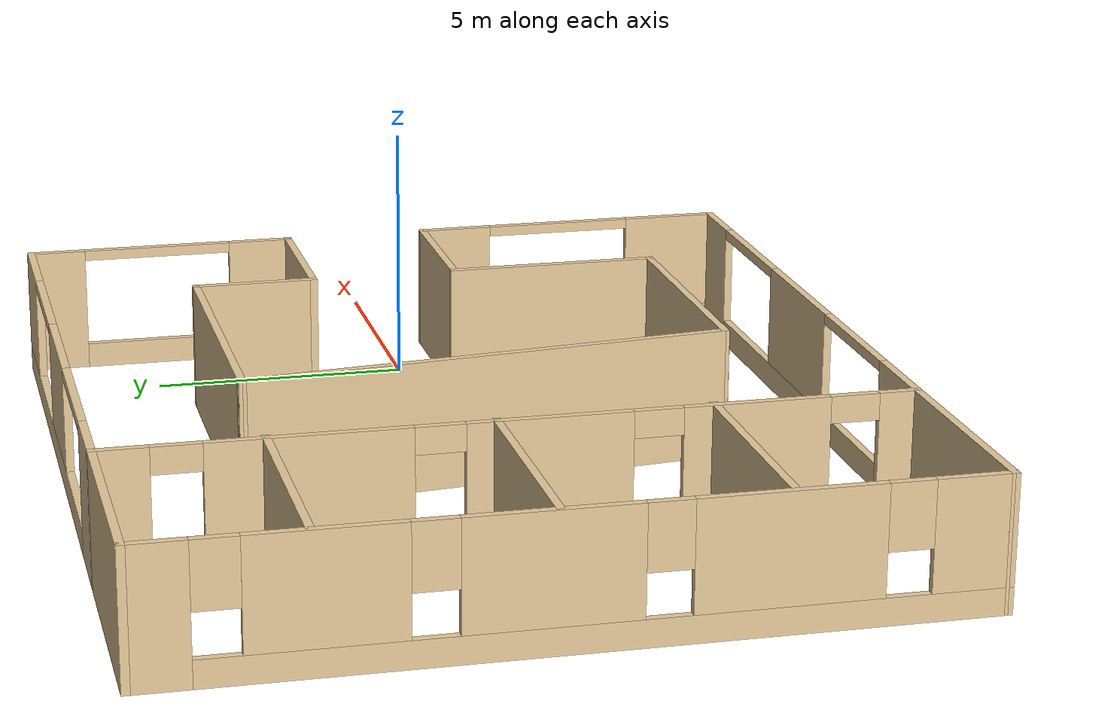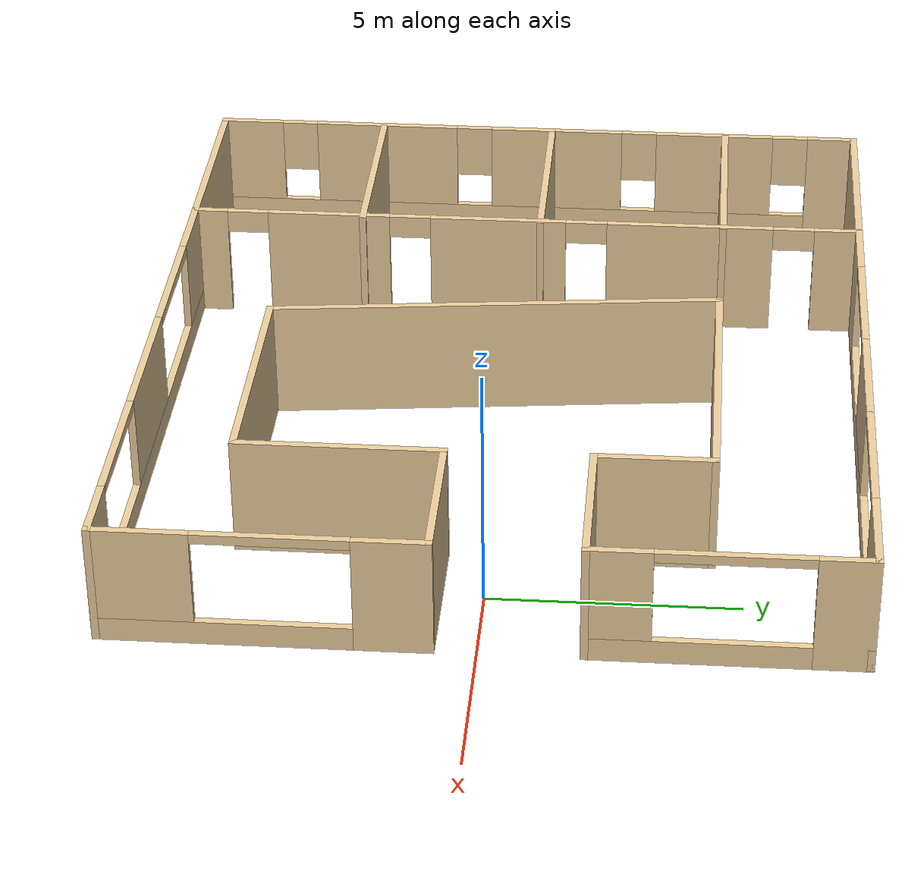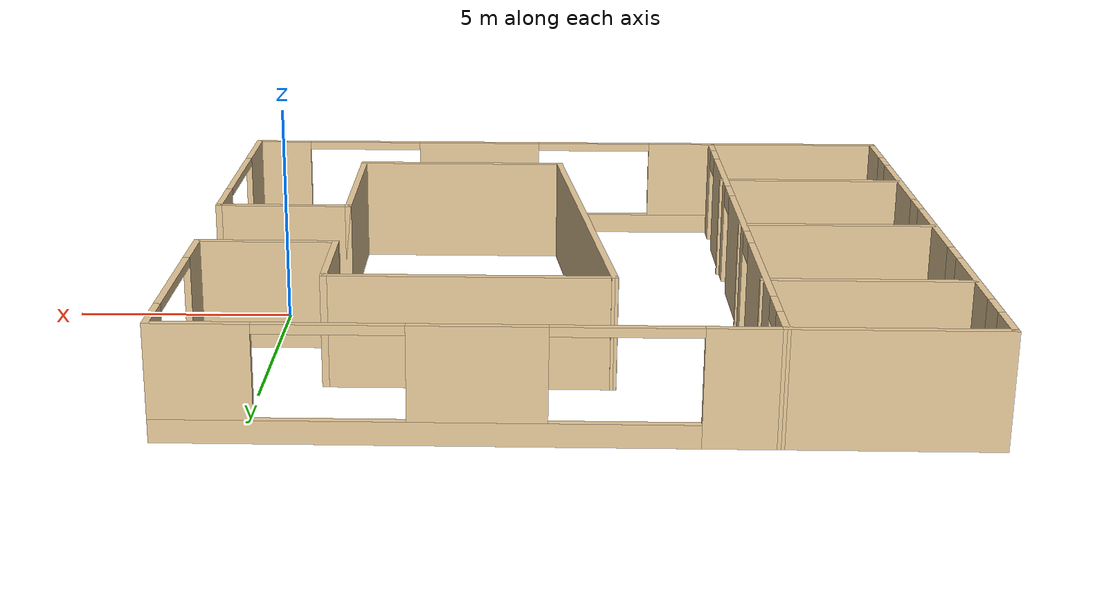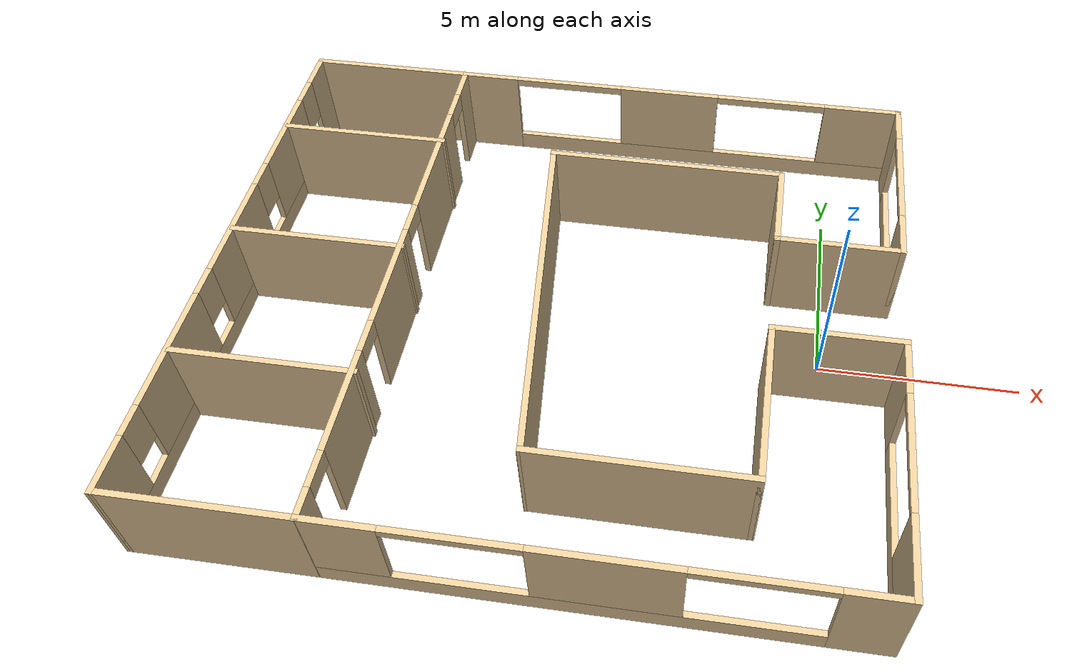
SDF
<?xml version='1.0'?>
<sdf version='1.6'>
  <model name='office'>
    <pose frame=''>-6.6146 0.075202 0 0 -0 0</pose>
    <link name='Wall_16'>
      <pose frame=''>2.16663 7.30005 0 0 -0 0</pose>
      <visual name='Wall_16_Visual_0'>
        <pose frame=''>-5.43994 0 1.25 0 -0 0</pose>
        <geometry>
          <box>
            <size>1.62012 0.15 2.5</size>
          </box>
        </geometry>
        <material>
          <script>
            <uri>file://media/materials/scripts/gazebo.material</uri>
            <name>Gazebo/Grey</name>
          </script>
          <ambient>0.921569 0.807843 0.615686 1</ambient>
        </material>
        <meta>
          <layer>0</layer>
        </meta>
      </visual>
      <collision name='Wall_16_Collision_0'>
        <geometry>
          <box>
            <size>1.62012 0.15 2.5</size>
          </box>
        </geometry>
        <pose frame=''>-5.43994 0 1.25 0 -0 0</pose>
      </collision>
      <visual name='Wall_16_Visual_1'>
        <pose frame=''>0.810061 0 0.25 0 -0 0</pose>
        <geometry>
          <box>
            <size>10.8799 0.15 0.5</size>
          </box>
        </geometry>
        <material>
          <script>
            <uri>file://media/materials/scripts/gazebo.material</uri>
            <name>Gazebo/Grey</name>
          </script>
          <ambient>0.921569 0.807843 0.615686 1</ambient>
        </material>
        <meta>
          <layer>0</layer>
        </meta>
      </visual>
      <collision name='Wall_16_Collision_1'>
        <geometry>
          <box>
            <size>10.8799 0.15 0.5</size>
          </box>
        </geometry>
        <pose frame=''>0.810061 0 0.25 0 -0 0</pose>
      </collision>
      <visual name='Wall_16_Visual_2'>
        <pose frame=''>-0.243954 0 1.5 0 -0 0</pose>
        <geometry>
          <box>
            <size>2.77185 0.15 2</size>
          </box>
        </geometry>
        <material>
          <script>
            <uri>file://media/materials/scripts/gazebo.material</uri>
            <name>Gazebo/Grey</name>
          </script>
          <ambient>0.921569 0.807843 0.615686 1</ambient>
        </material>
        <meta>
          <layer>0</layer>
        </meta>
      </visual>
      <collision name='Wall_16_Collision_2'>
        <geometry>
          <box>
            <size>2.77185 0.15 2</size>
          </box>
        </geometry>
        <pose frame=''>-0.243954 0 1.5 0 -0 0</pose>
      </collision>
      <visual name='Wall_16_Visual_3'>
        <pose frame=''>5.19599 0 1.5 0 -0 0</pose>
        <geometry>
          <box>
            <size>2.10803 0.15 2</size>
          </box>
        </geometry>
        <material>
          <script>
            <uri>file://media/materials/scripts/gazebo.material</uri>
            <name>Gazebo/Grey</name>
          </script>
          <ambient>0.921569 0.807843 0.615686 1</ambient>
        </material>
        <meta>
          <layer>0</layer>
        </meta>
      </visual>
      <collision name='Wall_16_Collision_3'>
        <geometry>
          <box>
            <size>2.10803 0.15 2</size>
          </box>
        </geometry>
        <pose frame=''>5.19599 0 1.5 0 -0 0</pose>
      </collision>
      <visual name='Wall_16_Visual_4'>
        <pose frame=''>-3.12988 0 2.4 0 -0 0</pose>
        <geometry>
          <box>
            <size>3 0.15 0.2</size>
          </box>
        </geometry>
        <material>
          <script>
            <uri>file://media/materials/scripts/gazebo.material</uri>
            <name>Gazebo/Grey</name>
          </script>
          <ambient>0.921569 0.807843 0.615686 1</ambient>
        </material>
        <meta>
          <layer>0</layer>
        </meta>
      </visual>
      <collision name='Wall_16_Collision_4'>
        <geometry>
          <box>
            <size>3 0.15 0.2</size>
          </box>
        </geometry>
        <pose frame=''>-3.12988 0 2.4 0 -0 0</pose>
      </collision>
      <visual name='Wall_16_Visual_5'>
        <pose frame=''>2.64197 0 2.4 0 -0 0</pose>
        <geometry>
          <box>
            <size>3 0.15 0.2</size>
          </box>
        </geometry>
        <material>
          <script>
            <uri>file://media/materials/scripts/gazebo.material</uri>
            <name>Gazebo/Grey</name>
          </script>
          <ambient>0.921569 0.807843 0.615686 1</ambient>
        </material>
        <meta>
          <layer>0</layer>
        </meta>
      </visual>
      <collision name='Wall_16_Collision_5'>
        <geometry>
          <box>
            <size>3 0.15 0.2</size>
          </box>
        </geometry>
        <pose frame=''>2.64197 0 2.4 0 -0 0</pose>
      </collision>
    </link>
    <link name='Wall_17'>
      <pose frame=''>8.34163 4.62505 0 0 0 -1.5708</pose>
      <visual name='Wall_17_Visual_0'>
        <pose frame=''>-2.16525 0 1.25 0 -0 0</pose>
        <geometry>
          <box>
            <size>1.16949 0.15 2.5</size>
          </box>
        </geometry>
        <material>
          <script>
            <uri>file://media/materials/scripts/gazebo.material</uri>
            <name>Gazebo/Grey</name>
          </script>
          <ambient>0.921569 0.807843 0.615686 1</ambient>
        </material>
        <meta>
          <layer>0</layer>
        </meta>
      </visual>
      <collision name='Wall_17_Collision_0'>
        <geometry>
          <box>
            <size>1.16949 0.15 2.5</size>
          </box>
        </geometry>
        <pose frame=''>-2.16525 0 1.25 0 -0 0</pose>
      </collision>
      <visual name='Wall_17_Visual_1'>
        <pose frame=''>0.584746 0 0.25 0 -0 0</pose>
        <geometry>
          <box>
            <size>4.33051 0.15 0.5</size>
          </box>
        </geometry>
        <material>
          <script>
            <uri>file://media/materials/scripts/gazebo.material</uri>
            <name>Gazebo/Grey</name>
          </script>
          <ambient>0.921569 0.807843 0.615686 1</ambient>
        </material>
        <meta>
          <layer>0</layer>
        </meta>
      </visual>
      <collision name='Wall_17_Collision_1'>
        <geometry>
          <box>
            <size>4.33051 0.15 0.5</size>
          </box>
        </geometry>
        <pose frame=''>0.584746 0 0.25 0 -0 0</pose>
      </collision>
      <visual name='Wall_17_Visual_2'>
        <pose frame=''>2.08475 0 1.5 0 -0 0</pose>
        <geometry>
          <box>
            <size>1.33051 0.15 2</size>
          </box>
        </geometry>
        <material>
          <script>
            <uri>file://media/materials/scripts/gazebo.material</uri>
            <name>Gazebo/Grey</name>
          </script>
          <ambient>0.921569 0.807843 0.615686 1</ambient>
        </material>
        <meta>
          <layer>0</layer>
        </meta>
      </visual>
      <collision name='Wall_17_Collision_2'>
        <geometry>
          <box>
            <size>1.33051 0.15 2</size>
          </box>
        </geometry>
        <pose frame=''>2.08475 0 1.5 0 -0 0</pose>
      </collision>
      <visual name='Wall_17_Visual_3'>
        <pose frame=''>-0.080508 0 2.4 0 -0 0</pose>
        <geometry>
          <box>
            <size>3 0.15 0.2</size>
          </box>
        </geometry>
        <material>
          <script>
            <uri>file://media/materials/scripts/gazebo.material</uri>
            <name>Gazebo/Grey</name>
          </script>
          <ambient>0.921569 0.807843 0.615686 1</ambient>
        </material>
        <meta>
          <layer>0</layer>
        </meta>
      </visual>
      <collision name='Wall_17_Collision_3'>
        <geometry>
          <box>
            <size>3 0.15 0.2</size>
          </box>
        </geometry>
        <pose frame=''>-0.080508 0 2.4 0 -0 0</pose>
      </collision>
    </link>
    <link name='Wall_18'>
      <collision name='Wall_18_Collision'>
        <geometry>
          <box>
            <size>3.25 0.15 2.5</size>
          </box>
        </geometry>
        <pose frame=''>0 0 1.25 0 -0 0</pose>
      </collision>
      <visual name='Wall_18_Visual'>
        <pose frame=''>0 0 1.25 0 -0 0</pose>
        <geometry>
          <box>
            <size>3.25 0.15 2.5</size>
          </box>
        </geometry>
        <material>
          <script>
            <uri>file://media/materials/scripts/gazebo.material</uri>
            <name>Gazebo/Grey</name>
          </script>
          <ambient>0.921569 0.807843 0.615686 1</ambient>
        </material>
        <meta>
          <layer>0</layer>
        </meta>
      </visual>
      <pose frame=''>6.79163 1.95005 0 0 -0 3.14159</pose>
    </link>
    <link name='Wall_19'>
      <collision name='Wall_19_Collision'>
        <geometry>
          <box>
            <size>2.5 0.15 2.5</size>
          </box>
        </geometry>
        <pose frame=''>0 0 1.25 0 -0 0</pose>
      </collision>
      <visual name='Wall_19_Visual'>
        <pose frame=''>0 0 1.25 0 -0 0</pose>
        <geometry>
          <box>
            <size>2.5 0.15 2.5</size>
          </box>
        </geometry>
        <material>
          <script>
            <uri>file://media/materials/scripts/gazebo.material</uri>
            <name>Gazebo/Grey</name>
          </script>
          <ambient>0.921569 0.807843 0.615686 1</ambient>
        </material>
        <meta>
          <layer>0</layer>
        </meta>
      </visual>
      <pose frame=''>5.24163 3.12505 0 0 -0 1.5708</pose>
    </link>
    <link name='Wall_20'>
      <collision name='Wall_20_Collision'>
        <geometry>
          <box>
            <size>6.25 0.15 2.5</size>
          </box>
        </geometry>
        <pose frame=''>0 0 1.25 0 -0 0</pose>
      </collision>
      <visual name='Wall_20_Visual'>
        <pose frame=''>0 0 1.25 0 -0 0</pose>
        <geometry>
          <box>
            <size>6.25 0.15 2.5</size>
          </box>
        </geometry>
        <material>
          <script>
            <uri>file://media/materials/scripts/gazebo.material</uri>
            <name>Gazebo/Grey</name>
          </script>
          <ambient>0.921569 0.807843 0.615686 1</ambient>
        </material>
        <meta>
          <layer>0</layer>
        </meta>
      </visual>
      <pose frame=''>2.19163 4.30005 0 0 -0 3.14159</pose>
    </link>
    <link name='Wall_21'>
      <collision name='Wall_21_Collision'>
        <geometry>
          <box>
            <size>9.54415 0.15 2.5</size>
          </box>
        </geometry>
        <pose frame=''>0 0 1.25 0 -0 0</pose>
      </collision>
      <visual name='Wall_21_Visual'>
        <pose frame=''>0 0 1.25 0 -0 0</pose>
        <geometry>
          <box>
            <size>9.54415 0.15 2.5</size>
          </box>
        </geometry>
        <material>
          <script>
            <uri>file://media/materials/scripts/gazebo.material</uri>
            <name>Gazebo/Grey</name>
          </script>
          <ambient>0.921569 0.807843 0.615686 1</ambient>
        </material>
        <meta>
          <layer>0</layer>
        </meta>
      </visual>
      <pose frame=''>-0.349906 -0.369424 0 0 0 -1.46233</pose>
    </link>
    <link name='Wall_22'>
      <collision name='Wall_22_Collision'>
        <geometry>
          <box>
            <size>5.25 0.15 2.5</size>
          </box>
        </geometry>
        <pose frame=''>0 0 1.25 0 -0 0</pose>
      </collision>
      <visual name='Wall_22_Visual'>
        <pose frame=''>0 0 1.25 0 -0 0</pose>
        <geometry>
          <box>
            <size>5.25 0.15 2.5</size>
          </box>
        </geometry>
        <material>
          <script>
            <uri>file://media/materials/scripts/gazebo.material</uri>
            <name>Gazebo/Grey</name>
          </script>
          <ambient>0.921569 0.807843 0.615686 1</ambient>
        </material>
        <meta>
          <layer>0</layer>
        </meta>
      </visual>
      <pose frame=''>2.70856 -5.0389 0 0 -0 0</pose>
    </link>
    <link name='Wall_23'>
      <collision name='Wall_23_Collision'>
        <geometry>
          <box>
            <size>4.25 0.15 2.5</size>
          </box>
        </geometry>
        <pose frame=''>0 0 1.25 0 -0 0</pose>
      </collision>
      <visual name='Wall_23_Visual'>
        <pose frame=''>0 0 1.25 0 -0 0</pose>
        <geometry>
          <box>
            <size>4.25 0.15 2.5</size>
          </box>
        </geometry>
        <material>
          <script>
            <uri>file://media/materials/scripts/gazebo.material</uri>
            <name>Gazebo/Grey</name>
          </script>
          <ambient>0.921569 0.807843 0.615686 1</ambient>
        </material>
        <meta>
          <layer>0</layer>
        </meta>
      </visual>
      <pose frame=''>5.25856 -2.9889 0 0 -0 1.5708</pose>
    </link>
    <link name='Wall_24'>
      <collision name='Wall_24_Collision'>
        <geometry>
          <box>
            <size>3.25 0.15 2.5</size>
          </box>
        </geometry>
        <pose frame=''>0 0 1.25 0 -0 0</pose>
      </collision>
      <visual name='Wall_24_Visual'>
        <pose frame=''>0 0 1.25 0 -0 0</pose>
        <geometry>
          <box>
            <size>3.25 0.15 2.5</size>
          </box>
        </geometry>
        <material>
          <script>
            <uri>file://media/materials/scripts/gazebo.material</uri>
            <name>Gazebo/Grey</name>
          </script>
          <ambient>0.921569 0.807843 0.615686 1</ambient>
        </material>
        <meta>
          <layer>0</layer>
        </meta>
      </visual>
      <pose frame=''>6.80856 -0.9389 0 0 -0 0</pose>
    </link>
    <link name='Wall_25'>
      <pose frame=''>8.35856 -4.1139 0 0 0 -1.5708</pose>
      <visual name='Wall_25_Visual_0'>
        <pose frame=''>-2.4888 0 1.25 0 -0 0</pose>
        <geometry>
          <box>
            <size>1.52241 0.15 2.5</size>
          </box>
        </geometry>
        <material>
          <script>
            <uri>file://media/materials/scripts/gazebo.material</uri>
            <name>Gazebo/Grey</name>
          </script>
          <ambient>0.921569 0.807843 0.615686 1</ambient>
        </material>
        <meta>
          <layer>0</layer>
        </meta>
      </visual>
      <collision name='Wall_25_Collision_0'>
        <geometry>
          <box>
            <size>1.52241 0.15 2.5</size>
          </box>
        </geometry>
        <pose frame=''>-2.4888 0 1.25 0 -0 0</pose>
      </collision>
      <visual name='Wall_25_Visual_1'>
        <pose frame=''>0.761203 0 0.25 0 -0 0</pose>
        <geometry>
          <box>
            <size>4.97759 0.15 0.5</size>
          </box>
        </geometry>
        <material>
          <script>
            <uri>file://media/materials/scripts/gazebo.material</uri>
            <name>Gazebo/Grey</name>
          </script>
          <ambient>0.921569 0.807843 0.615686 1</ambient>
        </material>
        <meta>
          <layer>0</layer>
        </meta>
      </visual>
      <collision name='Wall_25_Collision_1'>
        <geometry>
          <box>
            <size>4.97759 0.15 0.5</size>
          </box>
        </geometry>
        <pose frame=''>0.761203 0 0.25 0 -0 0</pose>
      </collision>
      <visual name='Wall_25_Visual_2'>
        <pose frame=''>2.2612 0 1.5 0 -0 0</pose>
        <geometry>
          <box>
            <size>1.97759 0.15 2</size>
          </box>
        </geometry>
        <material>
          <script>
            <uri>file://media/materials/scripts/gazebo.material</uri>
            <name>Gazebo/Grey</name>
          </script>
          <ambient>0.921569 0.807843 0.615686 1</ambient>
        </material>
        <meta>
          <layer>0</layer>
        </meta>
      </visual>
      <collision name='Wall_25_Collision_2'>
        <geometry>
          <box>
            <size>1.97759 0.15 2</size>
          </box>
        </geometry>
        <pose frame=''>2.2612 0 1.5 0 -0 0</pose>
      </collision>
      <visual name='Wall_25_Visual_3'>
        <pose frame=''>-0.227595 0 2.4 0 -0 0</pose>
        <geometry>
          <box>
            <size>3 0.15 0.2</size>
          </box>
        </geometry>
        <material>
          <script>
            <uri>file://media/materials/scripts/gazebo.material</uri>
            <name>Gazebo/Grey</name>
          </script>
          <ambient>0.921569 0.807843 0.615686 1</ambient>
        </material>
        <meta>
          <layer>0</layer>
        </meta>
      </visual>
      <collision name='Wall_25_Collision_3'>
        <geometry>
          <box>
            <size>3 0.15 0.2</size>
          </box>
        </geometry>
        <pose frame=''>-0.227595 0 2.4 0 -0 0</pose>
      </collision>
    </link>
    <link name='Wall_27'>
      <pose frame=''>2.18356 -7.2889 0 0 -0 3.14159</pose>
      <visual name='Wall_27_Visual_0'>
        <pose frame=''>-5.50692 0 1.25 0 -0 0</pose>
        <geometry>
          <box>
            <size>1.48615 0.15 2.5</size>
          </box>
        </geometry>
        <material>
          <script>
            <uri>file://media/materials/scripts/gazebo.material</uri>
            <name>Gazebo/Grey</name>
          </script>
          <ambient>0.921569 0.807843 0.615686 1</ambient>
        </material>
        <meta>
          <layer>0</layer>
        </meta>
      </visual>
      <collision name='Wall_27_Collision_0'>
        <geometry>
          <box>
            <size>1.48615 0.15 2.5</size>
          </box>
        </geometry>
        <pose frame=''>-5.50692 0 1.25 0 -0 0</pose>
      </collision>
      <visual name='Wall_27_Visual_1'>
        <pose frame=''>0.743078 0 0.25 0 -0 0</pose>
        <geometry>
          <box>
            <size>11.0138 0.15 0.5</size>
          </box>
        </geometry>
        <material>
          <script>
            <uri>file://media/materials/scripts/gazebo.material</uri>
            <name>Gazebo/Grey</name>
          </script>
          <ambient>0.921569 0.807843 0.615686 1</ambient>
        </material>
        <meta>
          <layer>0</layer>
        </meta>
      </visual>
      <collision name='Wall_27_Collision_1'>
        <geometry>
          <box>
            <size>11.0138 0.15 0.5</size>
          </box>
        </geometry>
        <pose frame=''>0.743078 0 0.25 0 -0 0</pose>
      </collision>
      <visual name='Wall_27_Visual_2'>
        <pose frame=''>-0.138321 0 1.5 0 -0 0</pose>
        <geometry>
          <box>
            <size>3.25105 0.15 2</size>
          </box>
        </geometry>
        <material>
          <script>
            <uri>file://media/materials/scripts/gazebo.material</uri>
            <name>Gazebo/Grey</name>
          </script>
          <ambient>0.921569 0.807843 0.615686 1</ambient>
        </material>
        <meta>
          <layer>0</layer>
        </meta>
      </visual>
      <collision name='Wall_27_Collision_2'>
        <geometry>
          <box>
            <size>3.25105 0.15 2</size>
          </box>
        </geometry>
        <pose frame=''>-0.138321 0 1.5 0 -0 0</pose>
      </collision>
      <visual name='Wall_27_Visual_3'>
        <pose frame=''>5.3686 0 1.5 0 -0 0</pose>
        <geometry>
          <box>
            <size>1.7628 0.15 2</size>
          </box>
        </geometry>
        <material>
          <script>
            <uri>file://media/materials/scripts/gazebo.material</uri>
            <name>Gazebo/Grey</name>
          </script>
          <ambient>0.921569 0.807843 0.615686 1</ambient>
        </material>
        <meta>
          <layer>0</layer>
        </meta>
      </visual>
      <collision name='Wall_27_Collision_3'>
        <geometry>
          <box>
            <size>1.7628 0.15 2</size>
          </box>
        </geometry>
        <pose frame=''>5.3686 0 1.5 0 -0 0</pose>
      </collision>
      <visual name='Wall_27_Visual_4'>
        <pose frame=''>-3.26384 0 2.4 0 -0 0</pose>
        <geometry>
          <box>
            <size>3 0.15 0.2</size>
          </box>
        </geometry>
        <material>
          <script>
            <uri>file://media/materials/scripts/gazebo.material</uri>
            <name>Gazebo/Grey</name>
          </script>
          <ambient>0.921569 0.807843 0.615686 1</ambient>
        </material>
        <meta>
          <layer>0</layer>
        </meta>
      </visual>
      <collision name='Wall_27_Collision_4'>
        <geometry>
          <box>
            <size>3 0.15 0.2</size>
          </box>
        </geometry>
        <pose frame=''>-3.26384 0 2.4 0 -0 0</pose>
      </collision>
      <visual name='Wall_27_Visual_5'>
        <pose frame=''>2.9872 0 2.4 0 -0 0</pose>
        <geometry>
          <box>
            <size>3 0.15 0.2</size>
          </box>
        </geometry>
        <material>
          <script>
            <uri>file://media/materials/scripts/gazebo.material</uri>
            <name>Gazebo/Grey</name>
          </script>
          <ambient>0.921569 0.807843 0.615686 1</ambient>
        </material>
        <meta>
          <layer>0</layer>
        </meta>
      </visual>
      <collision name='Wall_27_Collision_5'>
        <geometry>
          <box>
            <size>3 0.15 0.2</size>
          </box>
        </geometry>
        <pose frame=''>2.9872 0 2.4 0 -0 0</pose>
      </collision>
    </link>
    <link name='Wall_28'>
      <pose frame=''>-3.99991 0.005576 0 0 -0 1.57196</pose>
      <visual name='Wall_28_Visual_0'>
        <pose frame=''>-6.97284 0 1.25 0 -0 0</pose>
        <geometry>
          <box>
            <size>0.793275 0.15 2.5</size>
          </box>
        </geometry>
        <material>
          <script>
            <uri>file://media/materials/scripts/gazebo.material</uri>
            <name>Gazebo/Grey</name>
          </script>
          <ambient>0.921569 0.807843 0.615686 1</ambient>
        </material>
        <meta>
          <layer>0</layer>
        </meta>
      </visual>
      <collision name='Wall_28_Collision_0'>
        <geometry>
          <box>
            <size>0.793275 0.15 2.5</size>
          </box>
        </geometry>
        <pose frame=''>-6.97284 0 1.25 0 -0 0</pose>
      </collision>
      <visual name='Wall_28_Visual_1'>
        <pose frame=''>-4.33085 0 1.25 0 -0 0</pose>
        <geometry>
          <box>
            <size>2.69072 0.15 2.5</size>
          </box>
        </geometry>
        <material>
          <script>
            <uri>file://media/materials/scripts/gazebo.material</uri>
            <name>Gazebo/Grey</name>
          </script>
          <ambient>0.921569 0.807843 0.615686 1</ambient>
        </material>
        <meta>
          <layer>0</layer>
        </meta>
      </visual>
      <collision name='Wall_28_Collision_1'>
        <geometry>
          <box>
            <size>2.69072 0.15 2.5</size>
          </box>
        </geometry>
        <pose frame=''>-4.33085 0 1.25 0 -0 0</pose>
      </collision>
      <visual name='Wall_28_Visual_2'>
        <pose frame=''>-0.593492 0 1.25 0 -0 0</pose>
        <geometry>
          <box>
            <size>2.984 0.15 2.5</size>
          </box>
        </geometry>
        <material>
          <script>
            <uri>file://media/materials/scripts/gazebo.material</uri>
            <name>Gazebo/Grey</name>
          </script>
          <ambient>0.921569 0.807843 0.615686 1</ambient>
        </material>
        <meta>
          <layer>0</layer>
        </meta>
      </visual>
      <collision name='Wall_28_Collision_2'>
        <geometry>
          <box>
            <size>2.984 0.15 2.5</size>
          </box>
        </geometry>
        <pose frame=''>-0.593492 0 1.25 0 -0 0</pose>
      </collision>
      <visual name='Wall_28_Visual_3'>
        <pose frame=''>3.61338 0 1.25 0 -0 0</pose>
        <geometry>
          <box>
            <size>3.62975 0.15 2.5</size>
          </box>
        </geometry>
        <material>
          <script>
            <uri>file://media/materials/scripts/gazebo.material</uri>
            <name>Gazebo/Grey</name>
          </script>
          <ambient>0.921569 0.807843 0.615686 1</ambient>
        </material>
        <meta>
          <layer>0</layer>
        </meta>
      </visual>
      <collision name='Wall_28_Collision_3'>
        <geometry>
          <box>
            <size>3.62975 0.15 2.5</size>
          </box>
        </geometry>
        <pose frame=''>3.61338 0 1.25 0 -0 0</pose>
      </collision>
      <visual name='Wall_28_Visual_4'>
        <pose frame=''>6.84887 0 1.25 0 -0 0</pose>
        <geometry>
          <box>
            <size>1.04123 0.15 2.5</size>
          </box>
        </geometry>
        <material>
          <script>
            <uri>file://media/materials/scripts/gazebo.material</uri>
            <name>Gazebo/Grey</name>
          </script>
          <ambient>0.921569 0.807843 0.615686 1</ambient>
        </material>
        <meta>
          <layer>0</layer>
        </meta>
      </visual>
      <collision name='Wall_28_Collision_4'>
        <geometry>
          <box>
            <size>1.04123 0.15 2.5</size>
          </box>
        </geometry>
        <pose frame=''>6.84887 0 1.25 0 -0 0</pose>
      </collision>
      <visual name='Wall_28_Visual_5'>
        <pose frame=''>-6.12621 0 2.25 0 -0 0</pose>
        <geometry>
          <box>
            <size>0.9 0.15 0.5</size>
          </box>
        </geometry>
        <material>
          <script>
            <uri>file://media/materials/scripts/gazebo.material</uri>
            <name>Gazebo/Grey</name>
          </script>
          <ambient>0.921569 0.807843 0.615686 1</ambient>
        </material>
        <meta>
          <layer>0</layer>
        </meta>
      </visual>
      <collision name='Wall_28_Collision_5'>
        <geometry>
          <box>
            <size>0.9 0.15 0.5</size>
          </box>
        </geometry>
        <pose frame=''>-6.12621 0 2.25 0 -0 0</pose>
      </collision>
      <visual name='Wall_28_Visual_6'>
        <pose frame=''>-2.53549 0 2.25 0 -0 0</pose>
        <geometry>
          <box>
            <size>0.9 0.15 0.5</size>
          </box>
        </geometry>
        <material>
          <script>
            <uri>file://media/materials/scripts/gazebo.material</uri>
            <name>Gazebo/Grey</name>
          </script>
          <ambient>0.921569 0.807843 0.615686 1</ambient>
        </material>
        <meta>
          <layer>0</layer>
        </meta>
      </visual>
      <collision name='Wall_28_Collision_6'>
        <geometry>
          <box>
            <size>0.9 0.15 0.5</size>
          </box>
        </geometry>
        <pose frame=''>-2.53549 0 2.25 0 -0 0</pose>
      </collision>
      <visual name='Wall_28_Visual_7'>
        <pose frame=''>1.34851 0 2.25 0 -0 0</pose>
        <geometry>
          <box>
            <size>0.9 0.15 0.5</size>
          </box>
        </geometry>
        <material>
          <script>
            <uri>file://media/materials/scripts/gazebo.material</uri>
            <name>Gazebo/Grey</name>
          </script>
          <ambient>0.921569 0.807843 0.615686 1</ambient>
        </material>
        <meta>
          <layer>0</layer>
        </meta>
      </visual>
      <collision name='Wall_28_Collision_7'>
        <geometry>
          <box>
            <size>0.9 0.15 0.5</size>
          </box>
        </geometry>
        <pose frame=''>1.34851 0 2.25 0 -0 0</pose>
      </collision>
      <visual name='Wall_28_Visual_8'>
        <pose frame=''>5.87826 0 2.25 0 -0 0</pose>
        <geometry>
          <box>
            <size>0.9 0.15 0.5</size>
          </box>
        </geometry>
        <material>
          <script>
            <uri>file://media/materials/scripts/gazebo.material</uri>
            <name>Gazebo/Grey</name>
          </script>
          <ambient>0.921569 0.807843 0.615686 1</ambient>
        </material>
        <meta>
          <layer>0</layer>
        </meta>
      </visual>
      <collision name='Wall_28_Collision_8'>
        <geometry>
          <box>
            <size>0.9 0.15 0.5</size>
          </box>
        </geometry>
        <pose frame=''>5.87826 0 2.25 0 -0 0</pose>
      </collision>
    </link>
    <link name='Wall_30'>
      <collision name='Wall_30_Collision'>
        <geometry>
          <box>
            <size>4.5 0.15 2.5</size>
          </box>
        </geometry>
        <pose frame=''>0 0 1.25 0 -0 0</pose>
      </collision>
      <visual name='Wall_30_Visual'>
        <pose frame=''>0 0 1.25 0 -0 0</pose>
        <geometry>
          <box>
            <size>4.5 0.15 2.5</size>
          </box>
        </geometry>
        <material>
          <script>
            <uri>file://media/materials/scripts/gazebo.material</uri>
            <name>Gazebo/Grey</name>
          </script>
          <ambient>0.921569 0.807843 0.615686 1</ambient>
        </material>
        <meta>
          <layer>0</layer>
        </meta>
      </visual>
      <pose frame=''>-6.18337 7.30005 0 0 -0 3.14159</pose>
    </link>
    <link name='Wall_31'>
      <pose frame=''>-8.35837 5.1e-05 0 0 0 -1.5708</pose>
      <visual name='Wall_31_Visual_0'>
        <pose frame=''>-6.81216 0 1.25 0 -0 0</pose>
        <geometry>
          <box>
            <size>1.12568 0.15 2.5</size>
          </box>
        </geometry>
        <material>
          <script>
            <uri>file://media/materials/scripts/gazebo.material</uri>
            <name>Gazebo/Grey</name>
          </script>
          <ambient>0.921569 0.807843 0.615686 1</ambient>
        </material>
        <meta>
          <layer>0</layer>
        </meta>
      </visual>
      <collision name='Wall_31_Collision_0'>
        <geometry>
          <box>
            <size>1.12568 0.15 2.5</size>
          </box>
        </geometry>
        <pose frame=''>-6.81216 0 1.25 0 -0 0</pose>
      </collision>
      <visual name='Wall_31_Visual_1'>
        <pose frame=''>0.562842 0 0.25 0 -0 0</pose>
        <geometry>
          <box>
            <size>13.6243 0.15 0.5</size>
          </box>
        </geometry>
        <material>
          <script>
            <uri>file://media/materials/scripts/gazebo.material</uri>
            <name>Gazebo/Grey</name>
          </script>
          <ambient>0.921569 0.807843 0.615686 1</ambient>
        </material>
        <meta>
          <layer>0</layer>
        </meta>
      </visual>
      <collision name='Wall_31_Collision_1'>
        <geometry>
          <box>
            <size>13.6243 0.15 0.5</size>
          </box>
        </geometry>
        <pose frame=''>0.562842 0 0.25 0 -0 0</pose>
      </collision>
      <visual name='Wall_31_Visual_2'>
        <pose frame=''>-4.107 0 1.5 0 -0 0</pose>
        <geometry>
          <box>
            <size>2.68463 0.15 2</size>
          </box>
        </geometry>
        <material>
          <script>
            <uri>file://media/materials/scripts/gazebo.material</uri>
            <name>Gazebo/Grey</name>
          </script>
          <ambient>0.921569 0.807843 0.615686 1</ambient>
        </material>
        <meta>
          <layer>0</layer>
        </meta>
      </visual>
      <collision name='Wall_31_Collision_2'>
        <geometry>
          <box>
            <size>2.68463 0.15 2</size>
          </box>
        </geometry>
        <pose frame=''>-4.107 0 1.5 0 -0 0</pose>
      </collision>
      <visual name='Wall_31_Visual_3'>
        <pose frame=''>-0.449476 0 1.5 0 -0 0</pose>
        <geometry>
          <box>
            <size>3.03043 0.15 2</size>
          </box>
        </geometry>
        <material>
          <script>
            <uri>file://media/materials/scripts/gazebo.material</uri>
            <name>Gazebo/Grey</name>
          </script>
          <ambient>0.921569 0.807843 0.615686 1</ambient>
        </material>
        <meta>
          <layer>0</layer>
        </meta>
      </visual>
      <collision name='Wall_31_Collision_3'>
        <geometry>
          <box>
            <size>3.03043 0.15 2</size>
          </box>
        </geometry>
        <pose frame=''>-0.449476 0 1.5 0 -0 0</pose>
      </collision>
      <visual name='Wall_31_Visual_4'>
        <pose frame=''>3.50065 0 1.5 0 -0 0</pose>
        <geometry>
          <box>
            <size>3.26983 0.15 2</size>
          </box>
        </geometry>
        <material>
          <script>
            <uri>file://media/materials/scripts/gazebo.material</uri>
            <name>Gazebo/Grey</name>
          </script>
          <ambient>0.921569 0.807843 0.615686 1</ambient>
        </material>
        <meta>
          <layer>0</layer>
        </meta>
      </visual>
      <collision name='Wall_31_Collision_4'>
        <geometry>
          <box>
            <size>3.26983 0.15 2</size>
          </box>
        </geometry>
        <pose frame=''>3.50065 0 1.5 0 -0 0</pose>
      </collision>
      <visual name='Wall_31_Visual_5'>
        <pose frame=''>6.65528 0 1.5 0 -0 0</pose>
        <geometry>
          <box>
            <size>1.43943 0.15 2</size>
          </box>
        </geometry>
        <material>
          <script>
            <uri>file://media/materials/scripts/gazebo.material</uri>
            <name>Gazebo/Grey</name>
          </script>
          <ambient>0.921569 0.807843 0.615686 1</ambient>
        </material>
        <meta>
          <layer>0</layer>
        </meta>
      </visual>
      <collision name='Wall_31_Collision_5'>
        <geometry>
          <box>
            <size>1.43943 0.15 2</size>
          </box>
        </geometry>
        <pose frame=''>6.65528 0 1.5 0 -0 0</pose>
      </collision>
      <visual name='Wall_31_Visual_6'>
        <pose frame=''>-5.84932 0 1.9 0 -0 0</pose>
        <geometry>
          <box>
            <size>0.8 0.15 1.2</size>
          </box>
        </geometry>
        <material>
          <script>
            <uri>file://media/materials/scripts/gazebo.material</uri>
            <name>Gazebo/Grey</name>
          </script>
          <ambient>0.921569 0.807843 0.615686 1</ambient>
        </material>
        <meta>
          <layer>0</layer>
        </meta>
      </visual>
      <collision name='Wall_31_Collision_6'>
        <geometry>
          <box>
            <size>0.8 0.15 1.2</size>
          </box>
        </geometry>
        <pose frame=''>-5.84932 0 1.9 0 -0 0</pose>
      </collision>
      <visual name='Wall_31_Visual_7'>
        <pose frame=''>-2.36469 0 1.9 0 -0 0</pose>
        <geometry>
          <box>
            <size>0.8 0.15 1.2</size>
          </box>
        </geometry>
        <material>
          <script>
            <uri>file://media/materials/scripts/gazebo.material</uri>
            <name>Gazebo/Grey</name>
          </script>
          <ambient>0.921569 0.807843 0.615686 1</ambient>
        </material>
        <meta>
          <layer>0</layer>
        </meta>
      </visual>
      <collision name='Wall_31_Collision_7'>
        <geometry>
          <box>
            <size>0.8 0.15 1.2</size>
          </box>
        </geometry>
        <pose frame=''>-2.36469 0 1.9 0 -0 0</pose>
      </collision>
      <visual name='Wall_31_Visual_8'>
        <pose frame=''>1.46574 0 1.9 0 -0 0</pose>
        <geometry>
          <box>
            <size>0.8 0.15 1.2</size>
          </box>
        </geometry>
        <material>
          <script>
            <uri>file://media/materials/scripts/gazebo.material</uri>
            <name>Gazebo/Grey</name>
          </script>
          <ambient>0.921569 0.807843 0.615686 1</ambient>
        </material>
        <meta>
          <layer>0</layer>
        </meta>
      </visual>
      <collision name='Wall_31_Collision_8'>
        <geometry>
          <box>
            <size>0.8 0.15 1.2</size>
          </box>
        </geometry>
        <pose frame=''>1.46574 0 1.9 0 -0 0</pose>
      </collision>
      <visual name='Wall_31_Visual_9'>
        <pose frame=''>5.53557 0 1.9 0 -0 0</pose>
        <geometry>
          <box>
            <size>0.8 0.15 1.2</size>
          </box>
        </geometry>
        <material>
          <script>
            <uri>file://media/materials/scripts/gazebo.material</uri>
            <name>Gazebo/Grey</name>
          </script>
          <ambient>0.921569 0.807843 0.615686 1</ambient>
        </material>
        <meta>
          <layer>0</layer>
        </meta>
      </visual>
      <collision name='Wall_31_Collision_9'>
        <geometry>
          <box>
            <size>0.8 0.15 1.2</size>
          </box>
        </geometry>
        <pose frame=''>5.53557 0 1.9 0 -0 0</pose>
      </collision>
    </link>
    <link name='Wall_32'>
      <collision name='Wall_32_Collision'>
        <geometry>
          <box>
            <size>4.51694 0.15 2.5</size>
          </box>
        </geometry>
        <pose frame=''>0 0 1.25 0 -0 0</pose>
      </collision>
      <visual name='Wall_32_Visual'>
        <pose frame=''>0 0 1.25 0 -0 0</pose>
        <geometry>
          <box>
            <size>4.51694 0.15 2.5</size>
          </box>
        </geometry>
        <material>
          <script>
            <uri>file://media/materials/scripts/gazebo.material</uri>
            <name>Gazebo/Grey</name>
          </script>
          <ambient>0.921569 0.807843 0.615686 1</ambient>
        </material>
        <meta>
          <layer>0</layer>
        </meta>
      </visual>
      <pose frame=''>-6.1749 -7.29442 0 0 -0 0.00253</pose>
    </link>
    <link name='Wall_35'>
      <collision name='Wall_35_Collision'>
        <geometry>
          <box>
            <size>4.5 0.15 2.5</size>
          </box>
        </geometry>
        <pose frame=''>0 0 1.25 0 -0 0</pose>
      </collision>
      <visual name='Wall_35_Visual'>
        <pose frame=''>0 0 1.25 0 -0 0</pose>
        <geometry>
          <box>
            <size>4.5 0.15 2.5</size>
          </box>
        </geometry>
        <material>
          <script>
            <uri>file://media/materials/scripts/gazebo.material</uri>
            <name>Gazebo/Grey</name>
          </script>
          <ambient>0.921569 0.807843 0.615686 1</ambient>
        </material>
        <meta>
          <layer>0</layer>
        </meta>
      </visual>
      <pose frame=''>-6.12166 4.34679 0 0 -0 0</pose>
    </link>
    <link name='Wall_37'>
      <collision name='Wall_37_Collision'>
        <geometry>
          <box>
            <size>4.5 0.15 2.5</size>
          </box>
        </geometry>
        <pose frame=''>0 0 1.25 0 -0 0</pose>
      </collision>
      <visual name='Wall_37_Visual'>
        <pose frame=''>0 0 1.25 0 -0 0</pose>
        <geometry>
          <box>
            <size>4.5 0.15 2.5</size>
          </box>
        </geometry>
        <material>
          <script>
            <uri>file://media/materials/scripts/gazebo.material</uri>
            <name>Gazebo/Grey</name>
          </script>
          <ambient>0.921569 0.807843 0.615686 1</ambient>
        </material>
        <meta>
          <layer>0</layer>
        </meta>
      </visual>
      <pose frame=''>-6.1299 0.343127 0 0 -0 0</pose>
    </link>
    <link name='Wall_39'>
      <collision name='Wall_39_Collision'>
        <geometry>
          <box>
            <size>4.5 0.15 2.5</size>
          </box>
        </geometry>
        <pose frame=''>0 0 1.25 0 -0 0</pose>
      </collision>
      <visual name='Wall_39_Visual'>
        <pose frame=''>0 0 1.25 0 -0 0</pose>
        <geometry>
          <box>
            <size>4.5 0.15 2.5</size>
          </box>
        </geometry>
        <material>
          <script>
            <uri>file://media/materials/scripts/gazebo.material</uri>
            <name>Gazebo/Grey</name>
          </script>
          <ambient>0.921569 0.807843 0.615686 1</ambient>
        </material>
        <meta>
          <layer>0</layer>
        </meta>
      </visual>
      <pose frame=''>-6.1033 -3.5671 0 0 -0 0</pose>
    </link>
    <static>1</static>
  </model>
</sdf>
